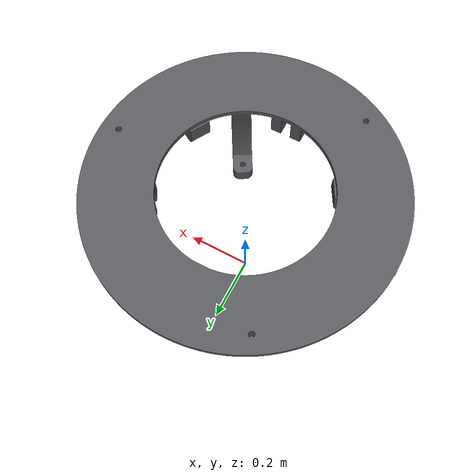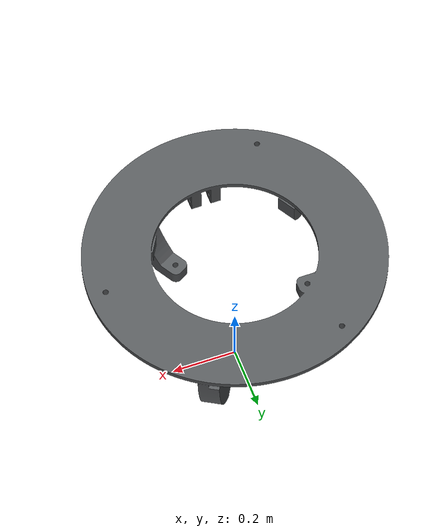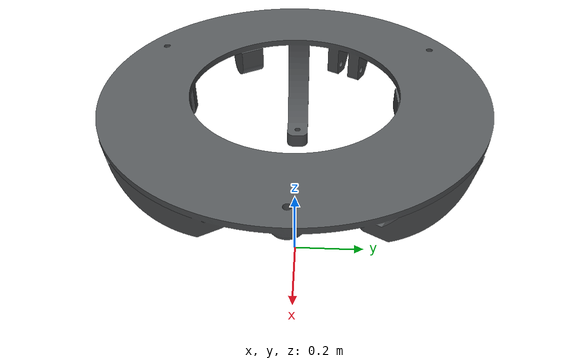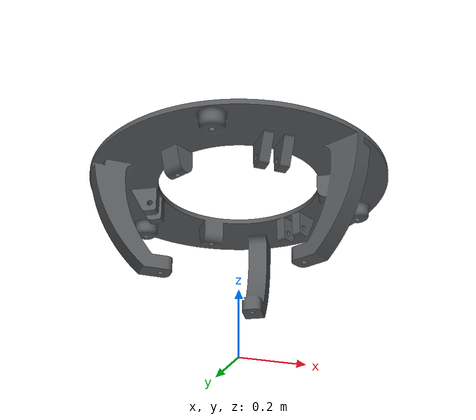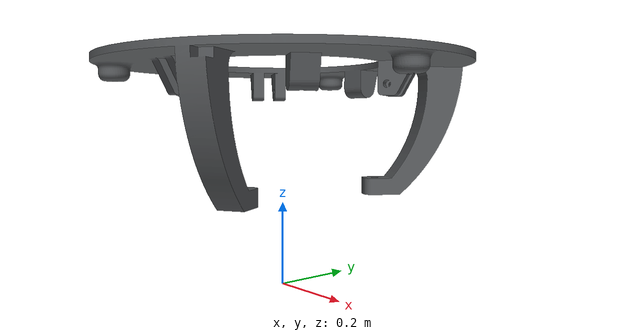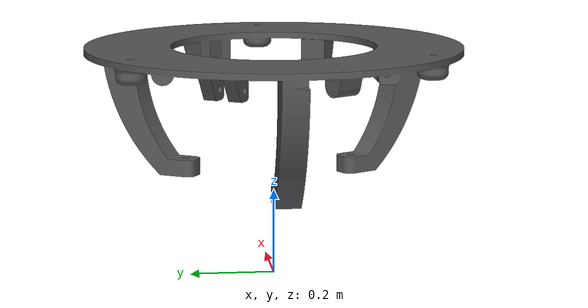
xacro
<?xml version="1.0" ?>
<robot name="xpider_step_base" xmlns:xacro="http://ros.org/wiki/xacro">
<xacro:include filename="$(find xpider_resources)/urdf/common_materials.xacro"/>
<xacro:include filename="$(find xpider_resources)/urdf/common_constants.xacro"/>

    <link name="step_base">
    <visual>
      <origin xyz="0 0 ${height_base}" rpy="${m_pi_2} 0 ${m_pi_3}"/>
      <geometry>
        <mesh filename="package://xpider_descriptions/meshes/step_base.stl" scale="${ratio_stl} ${ratio_stl} ${ratio_stl}"/>
      </geometry>
      <xacro:material_xpider_grey />
      </visual>
      <collision>
        <origin xyz="0 0 ${height_base}" rpy="${m_pi_2} 0 ${m_pi_3}"/>
        <geometry>
          <mesh filename="package://xpider_descriptions/meshes/step_base.stl" scale="${ratio_stl} ${ratio_stl} ${ratio_stl}"/>
        </geometry>
      </collision>
    </link>
</robot>

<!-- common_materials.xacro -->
<robot xmlns:xacro="http://ros.org/wiki/xacro">
  <xacro:include filename="$(find xpider_resources)/urdf/common_colours.xacro"/>

  <xacro:macro name="material_xpider_yellow">
    <material name="">
      <color rgba="${color_xpider_yellow}"/>
    </material>
  </xacro:macro>

  <xacro:macro name="material_xpider_white">
    <material name="">
      <color rgba="${color_xpider_white}"/>
    </material>
  </xacro:macro>

  <xacro:macro name="material_xpider_black">
    <material name="">
      <color rgba="${color_xpider_black}"/>
    </material>
  </xacro:macro>

  <xacro:macro name="material_xpider_grey">
    <material name="">
      <color rgba="${color_xpider_grey}"/>
    </material>
  </xacro:macro>

  <xacro:macro name="material_xpider_greyish">
    <material name="">
      <color rgba="${color_xpider_greyish}"/>
    </material>
  </xacro:macro>

</robot>

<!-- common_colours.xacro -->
<robot xmlns:xacro="http://ros.org/wiki/xacro">

  <!-- RAL 1021 -->
  <xacro:property name="color_xpider_yellow"   value="0.96 0.76 0.13 1.0" />
  <!-- RAL 9002 -->
  <xacro:property name="color_xpider_white"    value="0.86 0.85 0.81 1.0" />
  <!-- RAL 7024 -->
  <xacro:property name="color_xpider_grey"     value="0.34 0.35 0.36 1.0" />

  <!-- approximations -->
  <xacro:property name="color_xpider_black"    value="0.15 0.15 0.15 1.0" />
  <xacro:property name="color_xpider_greyish"  value="0.75 0.75 0.75 1.0" />

</robot>

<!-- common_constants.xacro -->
<robot xmlns:xacro="http://ros.org/wiki/xacro">

  <!-- Pi, the ratio of a circle's circumference to its diameter -->
  <xacro:property name="m_pi" value="3.1415926535" />
  <!-- Pi divided by two -->
  <xacro:property name="m_pi_2" value="1.570796327" />
  <!-- 3Pi divided by two -->
  <xacro:property name="m_3_pi_2" value="2.35619449" />
  <!-- Pi divided by four -->
  <xacro:property name="m_pi_4" value="0.785398163" />
  <!-- Pi divided by three -->
  <xacro:property name="m_pi_3" value="1.0471975512" />

  <xacro:property name="ratio_stl" value="0.01006046568"/>

  <xacro:property name="height_base" value="0.53"/>
</robot>
